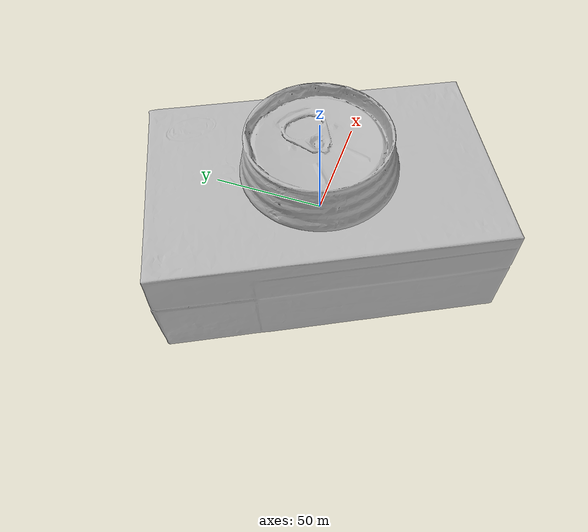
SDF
<?xml version="1.0" ?>
<sdf version="1.4">
  <world name="default">
    <light name="light1" type="point">
      <pose>0 0 1 0 0 0</pose>
      <diffuse>3 3 3 1</diffuse>
      <specular>3 3 3 1</specular>
    </light>
    <light name="light2" type="point">
      <pose>0 0.5 2 0 0 0</pose>
      <diffuse>1 1 1 1</diffuse>
      <specular>1 1 1 1</specular>
    </light>
    <light name="light3" type="point">
      <pose>0 0.5 2 0 0 0</pose>
      <diffuse>3 3 3 1</diffuse>
      <specular>3 3 3 1</specular>
    </light>
    <scene>
      <ambient>0.7 0.7 0.7</ambient>
    </scene>
    <model name="box1">
      <link name="link_box1">
        <collision name="default">
          <geometry>
            <mesh>
              <uri>model://realsense_box/collision_meshes/collision.obj</uri>
              <scale>1.0 1.0 1.0</scale>
            </mesh>
          </geometry>
          <surface>
            <friction>
              <ode>
                <mu>0.5</mu>
                <mu2>0.5</mu2>
              </ode>
            </friction>
            <contact>
              <ode>
                <max_vel>0</max_vel>
                <min_depth>0.0001</min_depth>
                <kp>1e8</kp>
              </ode>
            </contact>
          </surface>
        </collision>
        <visual name="default">
          <geometry>
            <mesh>
              <uri>model://realsense_box/visual_meshes/visual.dae</uri>
              <scale>1.0 1.0 1.0</scale>
            </mesh>
          </geometry>
        </visual>
        <inertial>
          <mass>0.5864310264587402</mass>
          <pose>4.0744838770478964e-05 8.587492629885674e-05 -2.4153792764991522e-05 -0.00012602841398420584 -0.00635893997803049 0.005012323893530406</pose>
          <inertia>
            <ixx>0.00055784633</ixx>
            <iyy>0.0011643406</iyy>
            <izz>0.0014403972</izz>
            <ixy>0</ixy>
            <ixz>0</ixz>
            <iyz>0</iyz>
          </inertia>
        </inertial>
      </link>
      <pose>0.04848596453666687 0.07921260595321655 0.02686779946088791 0.006485797925609465 0.01073824677065931 -1.1173453106399283</pose>
    </model>
    <model name="box2">
      <link name="link_box2">
        <collision name="default">
          <geometry>
            <mesh>
              <uri>model://wooden_puzzle1/collision_meshes/collision.obj</uri>
              <scale>1.0 1.0 1.0</scale>
            </mesh>
          </geometry>
          <surface>
            <friction>
              <ode>
                <mu>0.5</mu>
                <mu2>0.5</mu2>
              </ode>
            </friction>
            <contact>
              <ode>
                <max_vel>0</max_vel>
                <min_depth>0.0001</min_depth>
                <kp>1e8</kp>
              </ode>
            </contact>
          </surface>
        </collision>
        <visual name="default">
          <geometry>
            <mesh>
              <uri>model://wooden_puzzle1/visual_meshes/visual.dae</uri>
              <scale>1.0 1.0 1.0</scale>
            </mesh>
          </geometry>
        </visual>
        <inertial>
          <mass>0.029293930158019066</mass>
          <pose>-0.00017350679263472557 7.972260209498927e-05 -9.191554272547364e-05 -0.07784356807478612 -0.26361316070226715 -0.552870069934309</pose>
          <inertia>
            <ixx>5.5269634e-06</ixx>
            <iyy>5.4205675e-06</iyy>
            <izz>5.4852344e-06</izz>
            <ixy>0</ixy>
            <ixz>0</ixz>
            <iyz>0</iyz>
          </inertia>
        </inertial>
      </link>
      <pose>0.13888821005821228 0.05354124307632446 0.016802078112959862 0.010558369133382048 -0.009496399329312453 -1.7045468939096684</pose>
    </model>
    <model name="box3">
      <link name="link_box3">
        <collision name="default">
          <geometry>
            <mesh>
              <uri>model://wooden_puzzle2/collision_meshes/collision.obj</uri>
              <scale>1.0 1.0 1.0</scale>
            </mesh>
          </geometry>
          <surface>
            <friction>
              <ode>
                <mu>0.5</mu>
                <mu2>0.5</mu2>
              </ode>
            </friction>
            <contact>
              <ode>
                <max_vel>0</max_vel>
                <min_depth>0.0001</min_depth>
                <kp>1e8</kp>
              </ode>
            </contact>
          </surface>
        </collision>
        <visual name="default">
          <geometry>
            <mesh>
              <uri>model://wooden_puzzle2/visual_meshes/visual.dae</uri>
              <scale>1.0 1.0 1.0</scale>
            </mesh>
          </geometry>
        </visual>
        <inertial>
          <mass>0.046210821717977524</mass>
          <pose>2.7402538762544282e-05 4.9976635636994615e-05 6.587122334167361e-05 -0.19202726218652877 0.6112834530151037 -0.6338736448019666</pose>
          <inertia>
            <ixx>8.590097e-06</ixx>
            <iyy>8.826809e-06</iyy>
            <izz>8.7012395e-06</izz>
            <ixy>0</ixy>
            <ixz>0</ixz>
            <iyz>0</iyz>
          </inertia>
        </inertial>
      </link>
      <pose>0.0620434507727623 -0.1139330118894577 0.016917727887630463 0.020848640753383964 0.0007208984868371434 -1.165360536970934</pose>
    </model>
    <model name="can1">
      <link name="link_can1">
        <collision name="default">
          <geometry>
            <mesh>
              <uri>model://pepsi/collision_meshes/collision.obj</uri>
              <scale>1.0 1.0 1.0</scale>
            </mesh>
          </geometry>
          <surface>
            <friction>
              <ode>
                <mu>0.5</mu>
                <mu2>0.5</mu2>
              </ode>
            </friction>
            <contact>
              <ode>
                <max_vel>0</max_vel>
                <min_depth>0.0001</min_depth>
                <kp>1e8</kp>
              </ode>
            </contact>
          </surface>
        </collision>
        <visual name="default">
          <geometry>
            <mesh>
              <uri>model://pepsi/visual_meshes/visual.dae</uri>
              <scale>1.0 1.0 1.0</scale>
            </mesh>
          </geometry>
        </visual>
        <inertial>
          <mass>0.38708412647247314</mass>
          <pose>-7.5590331107378e-05 2.9931279641459696e-05 -0.0003384356386959553 -0.0010677624110939459 -0.0021735778616849013 0.5673701652335379</pose>
          <inertia>
            <ixx>0.00077114574</ixx>
            <iyy>0.0007705839</iyy>
            <izz>0.00016412749</izz>
            <ixy>0</ixy>
            <ixz>0</ixz>
            <iyz>0</iyz>
          </inertia>
        </inertial>
      </link>
      <pose>-0.06689299643039703 -0.08063790202140808 0.07449628412723541 -1.8879938630467022e-05 2.3832654598336336e-06 -1.5848778462853963</pose>
    </model>
    <model name="can2">
      <link name="link_can2">
        <collision name="default">
          <geometry>
            <mesh>
              <uri>model://redbull/collision_meshes/collision.obj</uri>
              <scale>1.0 1.0 1.0</scale>
            </mesh>
          </geometry>
          <surface>
            <friction>
              <ode>
                <mu>0.5</mu>
                <mu2>0.5</mu2>
              </ode>
            </friction>
            <contact>
              <ode>
                <max_vel>0</max_vel>
                <min_depth>0.0001</min_depth>
                <kp>1e8</kp>
              </ode>
            </contact>
          </surface>
        </collision>
        <visual name="default">
          <geometry>
            <mesh>
              <uri>model://redbull/visual_meshes/visual.dae</uri>
              <scale>1.0 1.0 1.0</scale>
            </mesh>
          </geometry>
        </visual>
        <inertial>
          <mass>0.22841571271419525</mass>
          <pose>-2.2126563635538332e-05 -0.00012659550702665 -0.0006860988214612007 0.001137008533125708 -0.010800935482360328 0.5858832407094048</pose>
          <inertia>
            <ixx>0.00021475992</ixx>
            <iyy>0.00021494119</iyy>
            <izz>0.00012744407</izz>
            <ixy>0</ixy>
            <ixz>0</ixz>
            <iyz>0</iyz>
          </inertia>
        </inertial>
      </link>
      <pose>0.06684539467096329 0.3147645890712738 0.04638563469052315 -0.010489031650768735 0.007261173848559195 2.914865111800155</pose>
    </model>
    <physics type="ode">
      <max_contacts>50</max_contacts>
      <ode>
        <solver>
          <type>quick</type>
          <iters>75</iters>
        </solver>
        <constraints>
          <contact_max_correcting_vel>0</contact_max_correcting_vel>
          <contact_surface_layer>0</contact_surface_layer>
        </constraints>
      </ode>
    </physics>
  </world>
</sdf>
